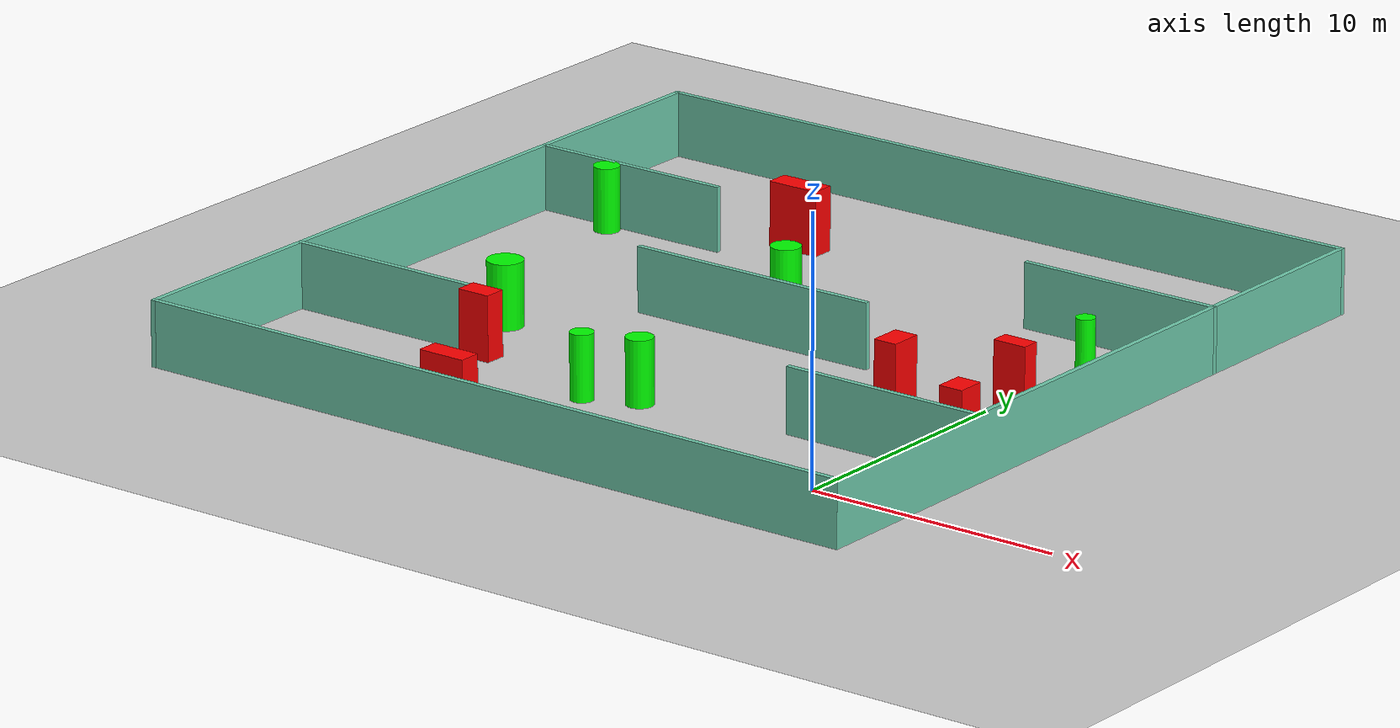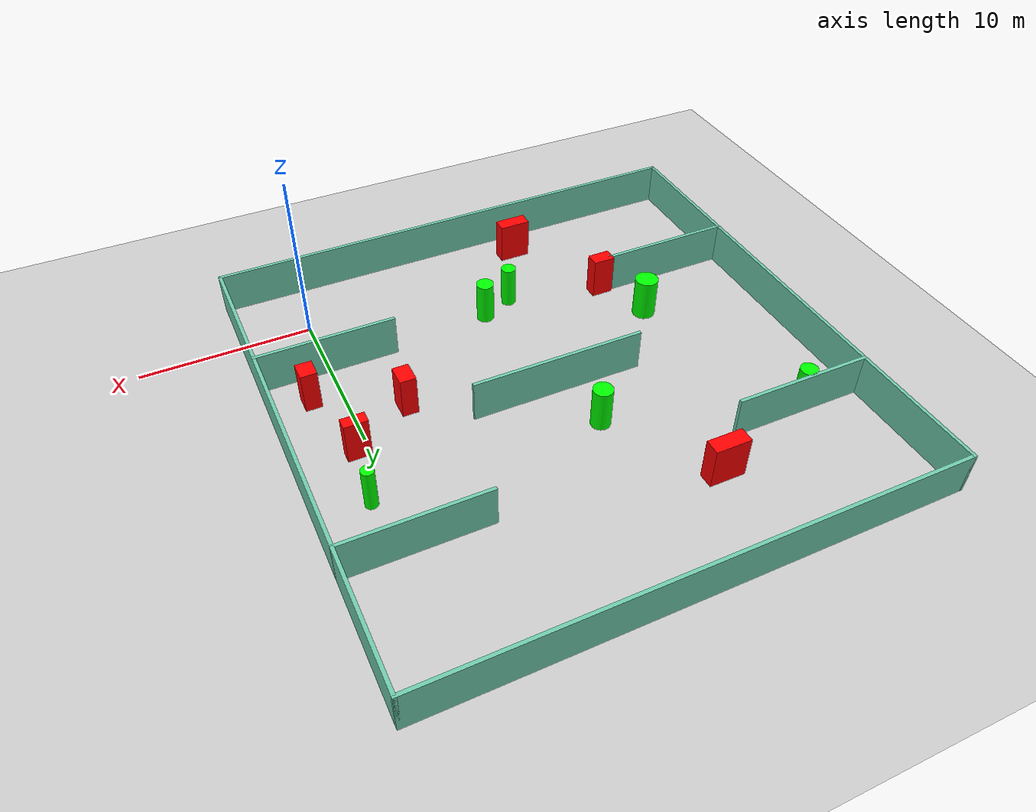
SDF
<sdf version="1.7">
 <world name="default">
  <light name="sun" type="directional">
   <pose>0 0 10 0 -0 0</pose>
   <diffuse>0.8 0.8 0.8 1</diffuse>
   <specular>0.2 0.2 0.2 1</specular>
   <attenuation>
    <range>1000</range>
    <constant>0.9</constant>
    <linear>0.01</linear>
    <quadratic>0.001</quadratic>
   </attenuation>
   <direction>-0.5 0.1 -0.9</direction>
   <spot><inner_angle>0</inner_angle><outer_angle>0</outer_angle><falloff>0</falloff></spot>
  </light>
  <model name="ground_plane">
   <static>1</static>
   <link name="link">
    <collision name="collision">
     <geometry><plane><normal>0 0 1</normal><size>100 100</size></plane></geometry>
     <surface>
      <contact><collide_bitmask>65535</collide_bitmask></contact>
      <friction><ode><mu>100</mu><mu2>50</mu2></ode></friction>
     </surface>
    </collision>
    <visual name="visual">
     <cast_shadows>0</cast_shadows>
     <geometry><plane><normal>0 0 1</normal><size>100 100</size></plane></geometry>
     <material>
      <script><uri>file://media/materials/scripts/gazebo.material</uri><name>Gazebo/Grey</name></script>
     </material>
    </visual>
   </link>
  </model>
  <gravity>0 0 -9.8</gravity>
  <magnetic_field>6e-06 2.3e-05 -4.2e-05</magnetic_field>
  <atmosphere type="adiabatic"/>
  <physics type="ode">
   <max_step_size>0.001</max_step_size>
   <real_time_factor>1</real_time_factor>
   <real_time_update_rate>1000</real_time_update_rate>
  </physics>
  <scene><ambient>0.4 0.4 0.4 1</ambient><background>0.7 0.7 0.7 1</background><shadows>1</shadows></scene>
  <spherical_coordinates>
   <surface_model>EARTH_WGS84</surface_model>
   <latitude_deg>0</latitude_deg>
   <longitude_deg>0</longitude_deg>
   <elevation>0</elevation>
   <heading_deg>0</heading_deg>
  </spherical_coordinates>
  <model name="my_base_walls">
   <link name="Wall_10">
    <collision name="Wall_10_Collision">
     <geometry><box><size>8.2 0.2 2.5</size></box></geometry>
     <pose>0 0 1.25 0 -0 0</pose>
    </collision>
    <visual name="Wall_10_Visual">
     <pose>0 0 1.25 0 -0 0</pose>
     <geometry><box><size>8.2 0.2 2.5</size></box></geometry>
     <material>
      <script><uri>file://media/materials/scripts/gazebo.material</uri><name>Gazebo/Grey</name></script>
      <ambient>0.435294 0.796078 0.67451 1</ambient>
     </material>
     <meta><layer>0</layer></meta>
    </visual>
    <pose>-11 -7 0 0 -0 0</pose>
   </link>
   <link name="Wall_12">
    <collision name="Wall_12_Collision">
     <geometry><box><size>8.2 0.2 2.5</size></box></geometry>
     <pose>0 0 1.25 0 -0 0</pose>
    </collision>
    <visual name="Wall_12_Visual">
     <pose>0 0 1.25 0 -0 0</pose>
     <geometry><box><size>8.2 0.2 2.5</size></box></geometry>
     <material>
      <script><uri>file://media/materials/scripts/gazebo.material</uri><name>Gazebo/Grey</name></script>
      <ambient>0.435294 0.796078 0.67451 1</ambient>
     </material>
     <meta><layer>0</layer></meta>
    </visual>
    <pose>-11 7 0 0 -0 0</pose>
   </link>
   <link name="Wall_14">
    <collision name="Wall_14_Collision">
     <geometry><box><size>8.2 0.2 2.5</size></box></geometry>
     <pose>0 0 1.25 0 -0 0</pose>
    </collision>
    <visual name="Wall_14_Visual">
     <pose>0 0 1.25 0 -0 0</pose>
     <geometry><box><size>8.2 0.2 2.5</size></box></geometry>
     <material>
      <script><uri>file://media/materials/scripts/gazebo.material</uri><name>Gazebo/Grey</name></script>
      <ambient>0.435294 0.796078 0.67451 1</ambient>
     </material>
     <meta><layer>0</layer></meta>
    </visual>
    <pose>11 7 0 0 -0 3.14159</pose>
   </link>
   <link name="Wall_16">
    <collision name="Wall_16_Collision">
     <geometry><box><size>10.2 0.2 2.5</size></box></geometry>
     <pose>0 0 1.25 0 -0 0</pose>
    </collision>
    <visual name="Wall_16_Visual">
     <pose>0 0 1.25 0 -0 0</pose>
     <geometry><box><size>10.2 0.2 2.5</size></box></geometry>
     <material>
      <script><uri>file://media/materials/scripts/gazebo.material</uri><name>Gazebo/Grey</name></script>
      <ambient>0.435294 0.796078 0.67451 1</ambient>
     </material>
     <meta><layer>0</layer></meta>
    </visual>
    <pose>0 0 0 0 -0 3.14159</pose>
   </link>
   <link name="Wall_2">
    <collision name="Wall_2_Collision">
     <geometry><box><size>30.2 0.2 2.5</size></box></geometry>
     <pose>0 0 1.25 0 -0 0</pose>
    </collision>
    <visual name="Wall_2_Visual">
     <pose>0 0 1.25 0 -0 0</pose>
     <geometry><box><size>30.2 0.2 2.5</size></box></geometry>
     <material>
      <script><uri>file://media/materials/scripts/gazebo.material</uri><name>Gazebo/Grey</name></script>
      <ambient>0.435294 0.796078 0.67451 1</ambient>
     </material>
     <meta><layer>0</layer></meta>
    </visual>
    <pose>0 -15 0 0 -0 3.14159</pose>
   </link>
   <link name="Wall_3">
    <collision name="Wall_3_Collision">
     <geometry><box><size>30.2 0.2 2.5</size></box></geometry>
     <pose>0 0 1.25 0 -0 0</pose>
    </collision>
    <visual name="Wall_3_Visual">
     <pose>0 0 1.25 0 -0 0</pose>
     <geometry><box><size>30.2 0.2 2.5</size></box></geometry>
     <material>
      <script><uri>file://media/materials/scripts/gazebo.material</uri><name>Gazebo/Grey</name></script>
      <ambient>0.435294 0.796078 0.67451 1</ambient>
     </material>
     <meta><layer>0</layer></meta>
    </visual>
    <pose>-15 0 0 0 -0 1.5708</pose>
   </link>
   <link name="Wall_4">
    <collision name="Wall_4_Collision">
     <geometry><box><size>30.2 0.2 2.5</size></box></geometry>
     <pose>0 0 1.25 0 -0 0</pose>
    </collision>
    <visual name="Wall_4_Visual">
     <pose>0 0 1.25 0 -0 0</pose>
     <geometry><box><size>30.2 0.2 2.5</size></box></geometry>
     <material>
      <script><uri>file://media/materials/scripts/gazebo.material</uri><name>Gazebo/Grey</name></script>
      <ambient>0.435294 0.796078 0.67451 1</ambient>
     </material>
     <meta><layer>0</layer></meta>
    </visual>
    <pose>0 15 0 0 -0 0</pose>
   </link>
   <link name="Wall_6">
    <collision name="Wall_6_Collision">
     <geometry><box><size>30.2 0.2 2.5</size></box></geometry>
     <pose>0 0 1.25 0 -0 0</pose>
    </collision>
    <visual name="Wall_6_Visual">
     <pose>0 0 1.25 0 -0 0</pose>
     <geometry><box><size>30.2 0.2 2.5</size></box></geometry>
     <material>
      <script><uri>file://media/materials/scripts/gazebo.material</uri><name>Gazebo/Grey</name></script>
      <ambient>0.435294 0.796078 0.67451 1</ambient>
     </material>
     <meta><layer>0</layer></meta>
    </visual>
    <pose>15 0 0 0 -0 1.5708</pose>
   </link>
   <link name="Wall_8">
    <collision name="Wall_8_Collision">
     <geometry><box><size>8.2 0.2 2.5</size></box></geometry>
     <pose>0 0 1.25 0 -0 0</pose>
    </collision>
    <visual name="Wall_8_Visual">
     <pose>0 0 1.25 0 -0 0</pose>
     <geometry><box><size>8.2 0.2 2.5</size></box></geometry>
     <material>
      <script><uri>file://media/materials/scripts/gazebo.material</uri><name>Gazebo/Grey</name></script>
      <ambient>0.435294 0.796078 0.67451 1</ambient>
     </material>
     <meta><layer>0</layer></meta>
    </visual>
    <pose>11 -7 0 0 -0 3.14159</pose>
   </link>
   <static>1</static>
   <pose>-11 11 0 0 -0 0</pose>
  </model>
  <model name="cylinder1">
   <static>1</static>
   <link name="link">
    <inertial>
     <mass>1</mass>
     <inertia><ixx>0.5</ixx><ixy>0</ixy><ixz>0</ixz><iyy>0.5</iyy><iyz>0</iyz><izz>1</izz></inertia>
    </inertial>
    <collision name="collision">
     <geometry><cylinder><radius>0.3580055323983474</radius><length>2.5</length></cylinder></geometry>
    </collision>
    <visual name="visual">
     <geometry><cylinder><radius>0.3580055323983474</radius><length>2.5</length></cylinder></geometry>
     <material>
      <ambient>0 1 0 1</ambient>
      <diffuse>0 1 0 1</diffuse>
      <specular>0.1 0.1 0.1 1</specular>
      <emissive>0 0 0 0</emissive>
     </material>
    </visual>
   </link>
   <pose>1.0984979646800639 14.3767957195328 1.25 0 0 0</pose>
  </model>
  <model name="cylinder2">
   <static>1</static>
   <link name="link">
    <inertial>
     <mass>1</mass>
     <inertia><ixx>0.5</ixx><ixy>0</ixy><ixz>0</ixz><iyy>0.5</iyy><iyz>0</iyz><izz>1</izz></inertia>
    </inertial>
    <collision name="collision">
     <geometry><cylinder><radius>0.5061552677936751</radius><length>2.5</length></cylinder></geometry>
    </collision>
    <visual name="visual">
     <geometry><cylinder><radius>0.5061552677936751</radius><length>2.5</length></cylinder></geometry>
     <material>
      <ambient>0 1 0 1</ambient>
      <diffuse>0 1 0 1</diffuse>
      <specular>0.1 0.1 0.1 1</specular>
      <emissive>0 0 0 0</emissive>
     </material>
    </visual>
   </link>
   <pose>-22.69533646857756 17.500102935079433 1.25 0 0 0</pose>
  </model>
  <model name="cylinder3">
   <static>1</static>
   <link name="link">
    <inertial>
     <mass>1</mass>
     <inertia><ixx>0.5</ixx><ixy>0</ixy><ixz>0</ixz><iyy>0.5</iyy><iyz>0</iyz><izz>1</izz></inertia>
    </inertial>
    <collision name="collision">
     <geometry><cylinder><radius>0.5179188114754473</radius><length>2.5</length></cylinder></geometry>
    </collision>
    <visual name="visual">
     <geometry><cylinder><radius>0.5179188114754473</radius><length>2.5</length></cylinder></geometry>
     <material>
      <ambient>0 1 0 1</ambient>
      <diffuse>0 1 0 1</diffuse>
      <specular>0.1 0.1 0.1 1</specular>
      <emissive>0 0 0 0</emissive>
     </material>
    </visual>
   </link>
   <pose>-10.035384071466137 3.2833387337265005 1.25 0 0 0</pose>
  </model>
  <model name="cylinder4">
   <static>1</static>
   <link name="link">
    <inertial>
     <mass>1</mass>
     <inertia><ixx>0.5</ixx><ixy>0</ixy><ixz>0</ixz><iyy>0.5</iyy><iyz>0</iyz><izz>1</izz></inertia>
    </inertial>
    <collision name="collision">
     <geometry><cylinder><radius>0.5692042098610771</radius><length>2.5</length></cylinder></geometry>
    </collision>
    <visual name="visual">
     <geometry><cylinder><radius>0.5692042098610771</radius><length>2.5</length></cylinder></geometry>
     <material>
      <ambient>0 1 0 1</ambient>
      <diffuse>0 1 0 1</diffuse>
      <specular>0.1 0.1 0.1 1</specular>
      <emissive>0 0 0 0</emissive>
     </material>
    </visual>
   </link>
   <pose>-11.940137001322716 14.204451748874344 1.25 0 0 0</pose>
  </model>
  <model name="cylinder5">
   <static>1</static>
   <link name="link">
    <inertial>
     <mass>1</mass>
     <inertia><ixx>0.5</ixx><ixy>0</ixy><ixz>0</ixz><iyy>0.5</iyy><iyz>0</iyz><izz>1</izz></inertia>
    </inertial>
    <collision name="collision">
     <geometry><cylinder><radius>0.6826846809906315</radius><length>2.5</length></cylinder></geometry>
    </collision>
    <visual name="visual">
     <geometry><cylinder><radius>0.6826846809906315</radius><length>2.5</length></cylinder></geometry>
     <material>
      <ambient>0 1 0 1</ambient>
      <diffuse>0 1 0 1</diffuse>
      <specular>0.1 0.1 0.1 1</specular>
      <emissive>0 0 0 0</emissive>
     </material>
    </visual>
   </link>
   <pose>-18.969205800639475 6.926950261176852 1.25 0 0 0</pose>
  </model>
  <model name="cylinder6">
   <static>1</static>
   <link name="link">
    <inertial>
     <mass>1</mass>
     <inertia><ixx>0.5</ixx><ixy>0</ixy><ixz>0</ixz><iyy>0.5</iyy><iyz>0</iyz><izz>1</izz></inertia>
    </inertial>
    <collision name="collision">
     <geometry><cylinder><radius>0.43923409124838986</radius><length>2.5</length></cylinder></geometry>
    </collision>
    <visual name="visual">
     <geometry><cylinder><radius>0.43923409124838986</radius><length>2.5</length></cylinder></geometry>
     <material>
      <ambient>0 1 0 1</ambient>
      <diffuse>0 1 0 1</diffuse>
      <specular>0.1 0.1 0.1 1</specular>
      <emissive>0 0 0 0</emissive>
     </material>
    </visual>
   </link>
   <pose>-11.955415112600653 2.463540939595349 1.25 0 0 0</pose>
  </model>
  <model name="box1">
   <static>1</static>
   <link name="link">
    <inertial>
     <mass>1</mass>
     <inertia><ixx>0.083</ixx><ixy>0</ixy><ixz>0</ixz><iyy>0.083</iyy><iyz>0</iyz><izz>0.083</izz></inertia>
    </inertial>
    <collision name="collision">
     <geometry><box><size>1.3392413239126753 0.6900155570032176 2.5</size></box></geometry>
    </collision>
    <visual name="visual">
     <geometry><box><size>1.3392413239126753 0.6900155570032176 2.5</size></box></geometry>
     <material>
      <ambient>1 0 0 1</ambient>
      <diffuse>1 0 0 1</diffuse>
      <specular>0.1 0.1 0.1 1</specular>
      <emissive>0 0 0 0</emissive>
     </material>
    </visual>
    <sensor name="my_contact" type="contact">
     <contact><collision>box_collision</collision><topic>__default_topic__</topic></contact>
    </sensor>
   </link>
   <pose>0.5973527019386111 10.851374700933787 1.25 0 0 0</pose>
  </model>
  <model name="box2">
   <static>1</static>
   <link name="link">
    <inertial>
     <mass>1</mass>
     <inertia><ixx>0.083</ixx><ixy>0</ixy><ixz>0</ixz><iyy>0.083</iyy><iyz>0</iyz><izz>0.083</izz></inertia>
    </inertial>
    <collision name="collision">
     <geometry><box><size>1.8897780753755993 0.848406431307575 2.5</size></box></geometry>
    </collision>
    <visual name="visual">
     <geometry><box><size>1.8897780753755993 0.848406431307575 2.5</size></box></geometry>
     <material>
      <ambient>1 0 0 1</ambient>
      <diffuse>1 0 0 1</diffuse>
      <specular>0.1 0.1 0.1 1</specular>
      <emissive>0 0 0 0</emissive>
     </material>
    </visual>
    <sensor name="my_contact" type="contact">
     <contact><collision>box_collision</collision><topic>__default_topic__</topic></contact>
    </sensor>
   </link>
   <pose>-14.314428331929742 -1.9794191147071345 1.25 0 0 0</pose>
  </model>
  <model name="box3">
   <static>1</static>
   <link name="link">
    <inertial>
     <mass>1</mass>
     <inertia><ixx>0.083</ixx><ixy>0</ixy><ixz>0</ixz><iyy>0.083</iyy><iyz>0</iyz><izz>0.083</izz></inertia>
    </inertial>
    <collision name="collision">
     <geometry><box><size>1.3170926497519289 0.8433386808875345 2.5</size></box></geometry>
    </collision>
    <visual name="visual">
     <geometry><box><size>1.3170926497519289 0.8433386808875345 2.5</size></box></geometry>
     <material>
      <ambient>1 0 0 1</ambient>
      <diffuse>1 0 0 1</diffuse>
      <specular>0.1 0.1 0.1 1</specular>
      <emissive>0 0 0 0</emissive>
     </material>
    </visual>
    <sensor name="my_contact" type="contact">
     <contact><collision>box_collision</collision><topic>__default_topic__</topic></contact>
    </sensor>
   </link>
   <pose>-17.599801225127155 3.8336668934114755 1.25 0 0 0</pose>
  </model>
  <model name="box4">
   <static>1</static>
   <link name="link">
    <inertial>
     <mass>1</mass>
     <inertia><ixx>0.083</ixx><ixy>0</ixy><ixz>0</ixz><iyy>0.083</iyy><iyz>0</iyz><izz>0.083</izz></inertia>
    </inertial>
    <collision name="collision">
     <geometry><box><size>2.097276866578594 0.8939903806446936 2.5</size></box></geometry>
    </collision>
    <visual name="visual">
     <geometry><box><size>2.097276866578594 0.8939903806446936 2.5</size></box></geometry>
     <material>
      <ambient>1 0 0 1</ambient>
      <diffuse>1 0 0 1</diffuse>
      <specular>0.1 0.1 0.1 1</specular>
      <emissive>0 0 0 0</emissive>
     </material>
    </visual>
    <sensor name="my_contact" type="contact">
     <contact><collision>box_collision</collision><topic>__default_topic__</topic></contact>
    </sensor>
   </link>
   <pose>-15.780880551933915 20.107667641247527 1.25 0 0 0</pose>
  </model>
  <model name="box5">
   <static>1</static>
   <link name="link">
    <inertial>
     <mass>1</mass>
     <inertia><ixx>0.083</ixx><ixy>0</ixy><ixz>0</ixz><iyy>0.083</iyy><iyz>0</iyz><izz>0.083</izz></inertia>
    </inertial>
    <collision name="collision">
     <geometry><box><size>0.9474171242041116 1.0949731559347122 2.5</size></box></geometry>
    </collision>
    <visual name="visual">
     <geometry><box><size>0.9474171242041116 1.0949731559347122 2.5</size></box></geometry>
     <material>
      <ambient>1 0 0 1</ambient>
      <diffuse>1 0 0 1</diffuse>
      <specular>0.1 0.1 0.1 1</specular>
      <emissive>0 0 0 0</emissive>
     </material>
    </visual>
    <sensor name="my_contact" type="contact">
     <contact><collision>box_collision</collision><topic>__default_topic__</topic></contact>
    </sensor>
   </link>
   <pose>1.7117159942666724 6.101503224040215 1.25 0 0 0</pose>
  </model>
  <model name="box6">
   <static>1</static>
   <link name="link">
    <inertial>
     <mass>1</mass>
     <inertia><ixx>0.083</ixx><ixy>0</ixy><ixz>0</ixz><iyy>0.083</iyy><iyz>0</iyz><izz>0.083</izz></inertia>
    </inertial>
    <collision name="collision">
     <geometry><box><size>0.9302312643554074 1.254368597589316 2.5</size></box></geometry>
    </collision>
    <visual name="visual">
     <geometry><box><size>0.9302312643554074 1.254368597589316 2.5</size></box></geometry>
     <material>
      <ambient>1 0 0 1</ambient>
      <diffuse>1 0 0 1</diffuse>
      <specular>0.1 0.1 0.1 1</specular>
      <emissive>0 0 0 0</emissive>
     </material>
    </visual>
    <sensor name="my_contact" type="contact">
     <contact><collision>box_collision</collision><topic>__default_topic__</topic></contact>
    </sensor>
   </link>
   <pose>-2.92973659482022 8.642191006180603 1.25 0 0 0</pose>
  </model>
 </world>
</sdf>
